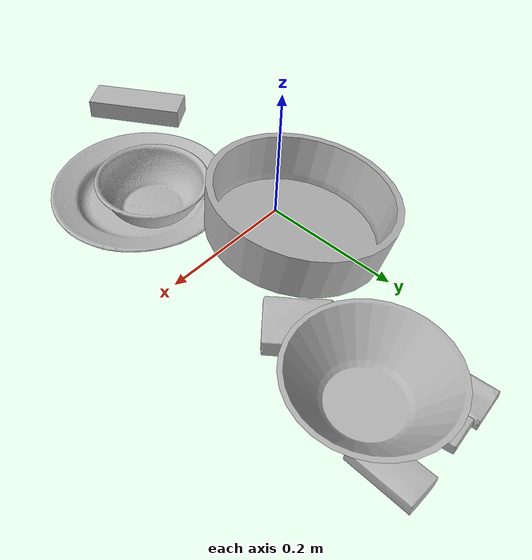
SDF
<sdf version="1.4">
  <world name="default">
    <light name="light1" type="point">
      <pose>0 0 1 0 0 0</pose>
      <diffuse>3 3 3 1</diffuse>
      <specular>3 3 3 1</specular>
    </light>
    <light name="light2" type="point">
      <pose>0 0.5 2 0 0 0</pose>
      <diffuse>1 1 1 1</diffuse>
      <specular>1 1 1 1</specular>
    </light>
    <light name="light3" type="point">
      <pose>0 0.5 2 0 0 0</pose>
      <diffuse>3 3 3 1</diffuse>
      <specular>3 3 3 1</specular>
    </light>
    <scene>
      <ambient>0.7 0.7 0.7</ambient>
    </scene>
    <model name="box1">
      <link name="link_box1">
        <collision name="default">
          <geometry>
            <mesh>
              <uri>model://jenga/collision_meshes/collision.obj</uri>
              <scale>1.0 1.0 1.0</scale>
            </mesh>
          </geometry>
          <surface>
            <friction>
              <ode>
                <mu>0.5</mu>
                <mu2>0.5</mu2>
              </ode>
            </friction>
          <contact>
        <ode>
            <max_vel>0</max_vel>
            <min_depth>0.0001</min_depth>
            <kp>1e8</kp>
        </ode>
    </contact></surface>
        </collision>
        <visual name="default">
          <geometry>
            <mesh>
              <uri>model://jenga/visual_meshes/visual.dae</uri>
              <scale>1.0 1.0 1.0</scale>
            </mesh>
          </geometry>
        </visual>
        <inertial>
          <mass>0.24226053059101105</mass>
          <pose>-2.502855807051674e-07 -0.0001025000965455547 -4.092339804628864e-05 0.0 -7.34215461761844e-07 0.0</pose>
          <inertia>
            <ixx>6.703936e-05</ixx>
            <iyy>0.0004542569</iyy>
            <izz>0.00048495785</izz>
            <ixy>0</ixy>
            <ixz>0</ixz>
            <iyz>0</iyz>
          </inertia>
        </inertial>
      </link>
      <pose>-0.019233759492635727 -0.3242940902709961 0.015000001527369022 1.8159801516050993e-08 1.000035568298776e-10 2.1345481351511797</pose>
    </model>
    <model name="box11">
      <link name="link_box11">
        <collision name="default">
          <geometry>
            <mesh>
              <uri>model://sugar_box/collision_meshes/collision.obj</uri>
              <scale>0.5 0.5 0.5</scale>
            </mesh>
          </geometry>
          <surface>
            <friction>
              <ode>
                <mu>0.5</mu>
                <mu2>0.5</mu2>
              </ode>
            </friction>
          <contact>
        <ode>
            <max_vel>0</max_vel>
            <min_depth>0.0001</min_depth>
            <kp>1e8</kp>
        </ode>
    </contact></surface>
        </collision>
        <visual name="default">
          <geometry>
            <mesh>
              <uri>model://sugar_box/visual_meshes/visual.dae</uri>
              <scale>0.5 0.5 0.5</scale>
            </mesh>
          </geometry>
        </visual>
        <inertial>
          <mass>0.06204606965184212</mass>
          <pose>0.0005171863595023751 1.9245549992774613e-05 -0.00018182402709499002 -0.0004046263588767038 0.0010506634057764815 0.0026153785560837986</pose>
          <inertia>
            <ixx>1.2924152e-05</ixx>
            <iyy>4.1773517e-05</iyy>
            <izz>5.0007893e-05</izz>
            <ixy>0</ixy>
            <ixz>0</ixz>
            <iyz>0</iyz>
          </inertia>
        </inertial>
      </link>
      <pose>0.2225944548845291 0.3558477759361267 0.011399299837648869 0.0007749393542288152 -0.023432575924171837 1.5294720328905866</pose>
    </model>
    <model name="box2">
      <link name="link_box2">
        <collision name="default">
          <geometry>
            <mesh>
              <uri>model://gelatin_box/collision_meshes/collision.obj</uri>
              <scale>1.0 1.0 1.0</scale>
            </mesh>
          </geometry>
          <surface>
            <friction>
              <ode>
                <mu>0.5</mu>
                <mu2>0.5</mu2>
              </ode>
            </friction>
          <contact>
        <ode>
            <max_vel>0</max_vel>
            <min_depth>0.0001</min_depth>
            <kp>1e8</kp>
        </ode>
    </contact></surface>
        </collision>
        <visual name="default">
          <geometry>
            <mesh>
              <uri>model://gelatin_box/visual_meshes/visual.dae</uri>
              <scale>1.0 1.0 1.0</scale>
            </mesh>
          </geometry>
        </visual>
        <inertial>
          <mass>0.13706544041633606</mass>
          <pose>0.000431961816502735 0.00011156871187267825 -0.0003640321083366871 -0.0010503719975702072 -0.0047558196187974565 0.01644056506069309</pose>
          <inertia>
            <ixx>9.675702e-05</ixx>
            <iyy>6.911303e-05</iyy>
            <izz>0.00014728573</izz>
            <ixy>0</ixy>
            <ixz>0</ixz>
            <iyz>0</iyz>
          </inertia>
        </inertial>
      </link>
      <pose>0.14997874200344086 0.1683700829744339 0.015167904086411 0.005575828551625129 -0.007313030532814906 -2.45491780590595</pose>
    </model>
    <model name="box21">
      <link name="link_box21">
        <collision name="default">
          <geometry>
            <mesh>
              <uri>model://pudding_box/collision_meshes/collision.obj</uri>
              <scale>0.5 0.5 0.5</scale>
            </mesh>
          </geometry>
          <surface>
            <friction>
              <ode>
                <mu>0.5</mu>
                <mu2>0.5</mu2>
              </ode>
            </friction>
          <contact>
        <ode>
            <max_vel>0</max_vel>
            <min_depth>0.0001</min_depth>
            <kp>1e8</kp>
        </ode>
    </contact></surface>
        </collision>
        <visual name="default">
          <geometry>
            <mesh>
              <uri>model://pudding_box/visual_meshes/visual.dae</uri>
              <scale>0.5 0.5 0.5</scale>
            </mesh>
          </geometry>
        </visual>
        <inertial>
          <mass>0.041178666055202484</mass>
          <pose>0.00024474109522998333 0.00040339428232982755 -0.00025944141088984907 0.005213101335872514 -0.006603799630434185 0.020079819569992066</pose>
          <inertia>
            <ixx>1.163759e-05</ixx>
            <iyy>7.8298535e-06</iyy>
            <izz>1.7185945e-05</izz>
            <ixy>0</ixy>
            <ixz>0</ixz>
            <iyz>0</iyz>
          </inertia>
        </inertial>
      </link>
      <pose>0.13866636157035828 0.3655039966106415 0.009862900711596012 0.02234907846460644 -0.011391350875121446 0.07808630978707765</pose>
    </model>
    <model name="box3">
      <link name="link_box3">
        <collision name="default">
          <geometry>
            <mesh>
              <uri>model://cracker_box/collision_meshes/collision.obj</uri>
              <scale>0.25 0.25 0.25</scale>
            </mesh>
          </geometry>
          <surface>
            <friction>
              <ode>
                <mu>0.5</mu>
                <mu2>0.5</mu2>
              </ode>
            </friction>
          <contact>
        <ode>
            <max_vel>0</max_vel>
            <min_depth>0.0001</min_depth>
            <kp>1e8</kp>
        </ode>
    </contact></surface>
        </collision>
        <visual name="default">
          <geometry>
            <mesh>
              <uri>model://cracker_box/visual_meshes/visual.dae</uri>
              <scale>0.25 0.25 0.25</scale>
            </mesh>
          </geometry>
        </visual>
        <inertial>
          <mass>0.02017100155353546</mass>
          <pose>0.00023660367878619581 6.358561222441494e-05 -0.00042573839891701937 -0.0003162077973682912 -0.011106487737506417 0.0025467945369474112</pose>
          <inertia>
            <ixx>3.2066264e-06</ixx>
            <iyy>5.2947703e-06</iyy>
            <izz>7.556123e-06</izz>
            <ixy>0</ixy>
            <ixz>0</ixz>
            <iyz>0</iyz>
          </inertia>
        </inertial>
      </link>
      <pose>0.08855359256267548 0.37532514333724976 0.009120447561144829 -0.011787971370915607 -0.007367136521379326 0.0754844774432602</pose>
    </model>
    <model name="box31">
      <link name="link_box31">
        <collision name="default">
          <geometry>
            <mesh>
              <uri>model://wood_block/collision_meshes/collision.obj</uri>
              <scale>0.5 0.5 0.5</scale>
            </mesh>
          </geometry>
          <surface>
            <friction>
              <ode>
                <mu>0.5</mu>
                <mu2>0.5</mu2>
              </ode>
            </friction>
          <contact>
        <ode>
            <max_vel>0</max_vel>
            <min_depth>0.0001</min_depth>
            <kp>1e8</kp>
        </ode>
    </contact></surface>
        </collision>
        <visual name="default">
          <geometry>
            <mesh>
              <uri>model://wood_block/visual_meshes/visual.dae</uri>
              <scale>0.5 0.5 0.5</scale>
            </mesh>
          </geometry>
        </visual>
        <inertial>
          <mass>0.1962708830833435</mass>
          <pose>-2.9066577553749084e-06 -0.000285404734313488 0.00013204291462898254 -0.05220969561834339 -0.0051926963065425085 -0.006861379449261536</pose>
          <inertia>
            <ixx>6.566003e-05</ixx>
            <iyy>0.00020742005</iyy>
            <izz>0.00020664421</izz>
            <ixy>0</ixy>
            <ixz>0</ixz>
            <iyz>0</iyz>
          </inertia>
        </inertial>
      </link>
      <pose>0.17397543787956238 0.2910458445549011 0.02262955531477928 -0.005275255256662644 0.005730493307795669 -0.03478274194744292</pose>
    </model>
    <model name="plate1">
      <link name="link_plate1">
        <collision name="default">
          <geometry>
            <mesh>
              <uri>model://plate/collision_meshes/collision.obj</uri>
              <scale>1.0 1.0 1.0</scale>
            </mesh>
          </geometry>
          <surface>
            <friction>
              <ode>
                <mu>0.5</mu>
                <mu2>0.5</mu2>
              </ode>
            </friction>
          <contact>
        <ode>
            <max_vel>0</max_vel>
            <min_depth>0.0001</min_depth>
            <kp>1e8</kp>
        </ode>
    </contact></surface>
        </collision>
        <visual name="default">
          <geometry>
            <mesh>
              <uri>model://plate/visual_meshes/visual.dae</uri>
              <scale>1.0 1.0 1.0</scale>
            </mesh>
          </geometry>
        </visual>
        <inertial>
          <mass>0.17345036566257477</mass>
          <pose>-0.0006044625188224018 0.00027825802681036294 -0.0010561991948634386 0.0022187574415082918 -0.0032254973035065115 0.4526175972404713</pose>
          <inertia>
            <ixx>0.00081140426</ixx>
            <iyy>0.0008036436</iyy>
            <izz>0.0015869853</izz>
            <ixy>0</ixy>
            <ixz>0</ixz>
            <iyz>0</iyz>
          </inertia>
        </inertial>
      </link>
      <pose>0.11907000839710236 -0.15626586973667145 0.013734034262597561 -5.543938703213093e-06 -1.3309158604138704e-05 1.3737969413697253</pose>
    </model>
    <model name="bowl1">
      <link name="link_bowl1">
        <collision name="default">
          <geometry>
            <mesh>
              <uri>model://bowl/collision_meshes/collision.obj</uri>
              <scale>1.0 1.0 1.0</scale>
            </mesh>
          </geometry>
          <surface>
            <friction>
              <ode>
                <mu>0.5</mu>
                <mu2>0.5</mu2>
              </ode>
            </friction>
          <contact>
        <ode>
            <max_vel>0</max_vel>
            <min_depth>0.0001</min_depth>
            <kp>1e8</kp>
        </ode>
    </contact></surface>
        </collision>
        <visual name="default">
          <geometry>
            <mesh>
              <uri>model://bowl/visual_meshes/visual.dae</uri>
              <scale>1.0 1.0 1.0</scale>
            </mesh>
          </geometry>
        </visual>
        <inertial>
          <mass>0.11633910983800888</mass>
          <pose>0.00020445004338398576 -0.0010302083101123571 -0.0008042659610509872 -0.01576420252076368 0.01454664289610389 0.7140315541596068</pose>
          <inertia>
            <ixx>0.0002672402</ixx>
            <iyy>0.000261269</iyy>
            <izz>0.00044958986</izz>
            <ixy>0</ixy>
            <ixz>0</ixz>
            <iyz>0</iyz>
          </inertia>
        </inertial>
      </link>
      <pose>0.12046075612306595 -0.12830109894275665 0.03210514038801193 -0.00930481432551417 0.007848822520248964 1.7509081152809254</pose>
    </model>
    <model name="plate2">
      <link name="link_plate2">
        <collision name="default">
          <geometry>
            <mesh>
              <uri>model://pan_tefal/collision_meshes/collision.obj</uri>
              <scale>1.0 1.0 1.0</scale>
            </mesh>
          </geometry>
          <surface>
            <friction>
              <ode>
                <mu>0.5</mu>
                <mu2>0.5</mu2>
              </ode>
            </friction>
          <contact>
        <ode>
            <max_vel>0</max_vel>
            <min_depth>0.0001</min_depth>
            <kp>1e8</kp>
        </ode>
    </contact></surface>
        </collision>
        <visual name="default">
          <geometry>
            <mesh>
              <uri>model://pan_tefal/visual_meshes/visual.dae</uri>
              <scale>1.0 1.0 1.0</scale>
            </mesh>
          </geometry>
        </visual>
        <inertial>
          <mass>0.6251956820487976</mass>
          <pose>-0.00018002417345996946 3.279016891610809e-05 -0.00851493515074253 0.0008190253681579672 -0.00033013925853852665 -0.331857454583129</pose>
          <inertia>
            <ixx>0.004315697</ixx>
            <iyy>0.00434352</iyy>
            <izz>0.007944365</izz>
            <ixy>0</ixy>
            <ixz>0</ixz>
            <iyz>0</iyz>
          </inertia>
        </inertial>
      </link>
      <pose>0.027865484356880188 0.06464538723230362 0.05616254359483719 -0.14999348080339428 0.036270611130629925 1.3606415495544488</pose>
    </model>
    <model name="bowl2">
      <link name="link_bowl2">
        <collision name="default">
          <geometry>
            <mesh>
              <uri>model://bowl_a/collision_meshes/collision.obj</uri>
              <scale>1.0 1.0 1.0</scale>
            </mesh>
          </geometry>
          <surface>
            <friction>
              <ode>
                <mu>0.5</mu>
                <mu2>0.5</mu2>
              </ode>
            </friction>
          <contact>
        <ode>
            <max_vel>0</max_vel>
            <min_depth>0.0001</min_depth>
            <kp>1e8</kp>
        </ode>
    </contact></surface>
        </collision>
        <visual name="default">
          <geometry>
            <mesh>
              <uri>model://bowl_a/visual_meshes/visual.dae</uri>
              <scale>1.0 1.0 1.0</scale>
            </mesh>
          </geometry>
        </visual>
        <inertial>
          <mass>0.3434441387653351</mass>
          <pose>0.0002786742115858942 4.731103399535641e-05 -0.0013765294570475817 -0.000980532155977885 -0.0010938290454026757 -0.191241060811112</pose>
          <inertia>
            <ixx>0.0009778013</ixx>
            <iyy>0.0009838042</iyy>
            <izz>0.0017390571</izz>
            <ixy>0</ixy>
            <ixz>0</ixz>
            <iyz>0</iyz>
          </inertia>
        </inertial>
      </link>
      <pose>0.19945943355560303 0.3017432391643524 0.07574793696403503 -0.0033159780560028753 -0.0049989373107438735 -1.0379414560699913</pose>
    </model>
  <physics type="ode">
      <max_contacts>50</max_contacts>
      <ode>
        <solver>
          <type>quick</type>
          <iters>75</iters>
        </solver>
        <constraints>
          <contact_max_correcting_vel>0</contact_max_correcting_vel>
          <contact_surface_layer>0</contact_surface_layer>
        </constraints>
      </ode>
    </physics></world>
</sdf>
